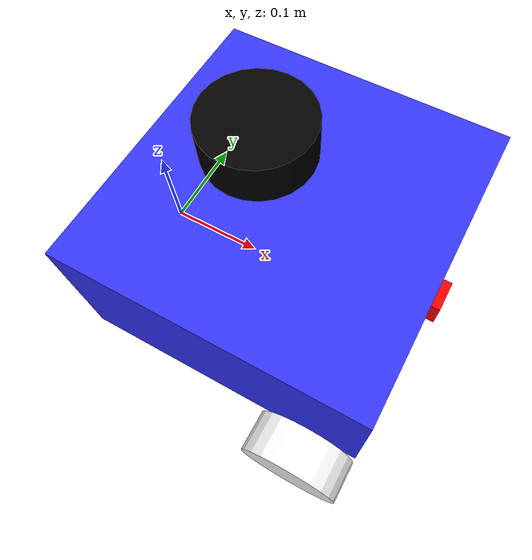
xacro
<?xml version="1.0"?>
<robot xmlns:xacro="http://www.ros.org/wiki/xacro"  name="robot">

    <xacro:include filename = "robot_core.xacro"/>

    <xacro:include filename = "gazebo_control.xacro"/>

    <xacro:include filename = "lidar.xacro"/>

    <xacro:include filename = "camera.xacro"/>

</robot>

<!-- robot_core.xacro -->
<robot xmlns:xacro="http://www.ros.org/wiki/xacro">

    <xacro:include filename="inertial_macros.xacro"/>

    <material name="white">
        <color rgba="1 1 1 1"/>
    </material>

    <material name="orange">
        <color rgba="1 0.3 0.1 1"/>
    </material>

    <material name="blue">
        <color rgba="0.2 0.2 1 1"/>
    </material>

    <material name="black">
        <color rgba="0 0 0 1"/>
    </material>

    <material name="red">
        <color rgba="1 0 0 1"/>
    </material>

    <!-- BASE LINK/-->

    <link name="base_link">

    </link>

    <link name="base_footprint"></link>

    <joint name="base_joint" type="fixed">
        <parent link="base_footprint"/>
        <child link="base_link"/>
        <origin xyz="0 0 0"/>
    </joint>

    <!--CHASSIS LINK/-->

    <joint name="chassis_joint" type="fixed">
        <parent link="base_link"/>
        <child link="chassis"/>
        <origin xyz="0 0 0"/>
    </joint>

    <link name="chassis">
        <inertial>
            <mass value="0.5"/>
            <origin rpy="0 0 0" xyz="0.15 0 0.075"/>
            <inertia ixx="0.00395416666667" ixy="0" ixz="0" iyy="0.0106208333333" iyz="0" izz="0.0106208333333"/>
        </inertial>
        <visual>
            <origin xyz="0.15 0 0.075"/>
            <geometry>
                <box size="0.3 0.3 0.15"/>
            </geometry>
            <material name="blue"/>
        </visual>
        <collision>
            <origin xyz="0.15 0 0.075"/>
            <geometry>
                <box size="0.3 0.3 0.15"/>
            </geometry>
        </collision>
    </link>

    <gazebo reference = "chassis">
        <material>Gazebo/Blue</material>
    </gazebo>

    <!-- LEFT WHEEL LINK -->

    <joint name="left_wheel_joint" type="continuous">
            <parent link="chassis"/>
            <child link="left_wheel"/>
            <origin xyz="0.25 0.175 0" rpy="-${pi/2} 0 0"/>
            <axis xyz="0 0 1"/>
    </joint>

    <link name="left_wheel">
        <visual>
            <geometry>
                <cylinder radius="0.05" length="0.04"/>
            </geometry>
            <material name="white"/>
        </visual>
        <collision>
            <geometry>
                <cylinder radius="0.05" length="0.04"/>
            </geometry>
        </collision>
        <inertial>
            <mass value="0.2"/>
            <origin rpy="0 0 0" xyz="0 0 0"/>
            <inertia ixx="0.000151667" ixy="0" ixz="0" iyy="0.000151667" iyz="0" izz="0.00025"/>
        </inertial>
    </link>

    <gazebo reference = "left_wheel">
        <material>Gazebo/White</material>
    </gazebo>

 <!-- RIGHT WHEEL LINK -->

    <joint name="right_wheel_joint" type="continuous">
            <parent link="chassis"/>
            <child link="right_wheel"/>
            <origin xyz="0.25 -0.175 0" rpy="${pi/2} 0 0"/>
            <axis xyz="0 0 -1"/>
    </joint>

    <link name="right_wheel">
        <visual>
            <origin xyz="0 0 0" rpy="0 0 0"/>
            <geometry>
                <cylinder radius="0.05" length="0.04"/>
            </geometry>
            <material name="white"/>
        </visual>
        <collision>
            <geometry>
                <cylinder radius="0.05" length="0.04"/>
            </geometry>
        </collision>
        <inertial>
            <mass value="0.2"/>
            <origin rpy="0 0 0" xyz="0 0 0"/>
            <inertia ixx="0.000151667" ixy="0" ixz="0" iyy="0.000151667" iyz="0" izz="0.00025"/>
        </inertial>
    </link>

    <gazebo reference = "right_wheel">
        <material>Gazebo/White</material>
    </gazebo>

 <!-- CASTER WHEEL LINK-->

    <joint name="caster_wheel_joint" type="fixed">
        <parent link="chassis"/>
        <child link="caster_wheel"/>
        <origin xyz="0.05 0 0"/>
    </joint>

    <link name="caster_wheel">
        <visual>
            <geometry>
                <sphere radius="0.05"/>
            </geometry>
            <material name="white"/>
        </visual>
        <collision>
            <geometry>
                <sphere radius="0.05"/>
            </geometry>
        </collision>
        <inertial>
            <mass value="0.2"/>
            <origin rpy="0 0 0" xyz="0 0 0"/>
            <inertia ixx="0.0003" ixy="0" ixz="0" iyy="0.0003" iyz="0" izz="0.0003"/>
        </inertial>
    </link>

    <gazebo reference = "caster_wheel">
        <material>Gazebo/White</material>
        <mu1 value = "0.001"/>
        <mu2 value = "0.001"/>
    </gazebo>

</robot>

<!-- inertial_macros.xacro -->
<robot xmlns:xacro="http://www.ros.org/wiki/xacro" >

    <!-- Specify some standard inertial calculations https://en.wikipedia.org/wiki/List_of_moments_of_inertia -->

    <xacro:macro name="inertial_sphere" params="mass radius *origin">
        <inertial>
            <xacro:insert_block name="origin"/>
            <mass value="${mass}" />
            <inertia ixx="${(2/5) * mass * (radius*radius)}" ixy="0.0" ixz="0.0"
                    iyy="${(2/5) * mass * (radius*radius)}" iyz="0.0"
                    izz="${(2/5) * mass * (radius*radius)}" />
        </inertial>
    </xacro:macro>

    <xacro:macro name="inertial_box" params="mass x y z *origin">
        <inertial>
            <xacro:insert_block name="origin"/>
            <mass value="${mass}" />
            <inertia ixx="${(1/12) * mass * (y*y+z*z)}" ixy="0.0" ixz="0.0"
                    iyy="${(1/12) * mass * (x*x+z*z)}" iyz="0.0"
                    izz="${(1/12) * mass * (x*x+y*y)}" />
        </inertial>
    </xacro:macro>

    <xacro:macro name="inertial_cylinder" params="mass length radius *origin">
        <inertial>
            <xacro:insert_block name="origin"/>
            <mass value="${mass}" />
            <inertia ixx="${(1/12) * mass * (3*radius*radius + length*length)}" ixy="0.0" ixz="0.0"
                    iyy="${(1/12) * mass * (3*radius*radius + length*length)}" iyz="0.0"
                    izz="${(1/2) * mass * (radius*radius)}" />
        </inertial>
    </xacro:macro>

</robot>

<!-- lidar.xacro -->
<robot xmlns:xacro="http://www.ros.org/wiki/xacro" >

    <joint name="laser_joint" type="fixed">
        <parent link="chassis"/>
        <child link="laser_frame"/>
        <origin xyz="0.122 0 0.212" rpy="0 0 0"/>
    </joint>

    <link name="laser_frame">
        <visual>
            <geometry>
                <cylinder radius="0.05" length="0.04"/>
            </geometry>
            <material name="black"/>
        </visual>
        <visual>
            <origin xyz="0 0 -0.05"/>
            <geometry>
                <cylinder radius="0.01" length="0.1"/>
            </geometry>
            <material name="black"/>
        </visual>
        <collision>
            <geometry>
                <cylinder radius="0.05" length="0.04"/>
            </geometry>
        </collision>
        <xacro:inertial_cylinder mass="0.1" length="0.04" radius="0.05">
            <origin xyz="0 0 0" rpy="0 0 0"/>
        </xacro:inertial_cylinder>
    </link>

    <gazebo reference="laser_frame">
        <material>Gazebo/Black</material>

        <sensor name="laser" type="ray">
            <pose> 0 0 0 0 0 0 </pose>
            <visualize>false</visualize>
            <update_rate>10</update_rate>
            <ray>
                <scan>
                    <horizontal>
                        <samples>360</samples>
                        <min_angle>-3.14</min_angle>
                        <max_angle>3.14</max_angle>
                    </horizontal>
                </scan>
                <range>
                    <min>0.3</min>
                    <max>12</max>
                </range>
                <noise>
                    <type>gaussian</type>
                    <mean>0.0</mean>
                    <stddev>0.01</stddev>
                </noise>
            </ray>
            <plugin name="laser_controller" filename="libgazebo_ros_ray_sensor.so">
                <ros>
                    <argument>~/out:=scan</argument>
                </ros>
                <output_type>sensor_msgs/LaserScan</output_type>
                <frame_name>laser_frame</frame_name>
            </plugin>
        </sensor>
    </gazebo>

</robot>

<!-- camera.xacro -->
<robot xmlns:xacro="http://www.ros.org/wiki/xacro" >

    <joint name="camera_joint" type="fixed">
        <parent link="chassis"/>
        <child link="camera_link"/>
        <origin xyz="0.305 0 0.08" rpy="0 0 0"/>
    </joint>

    <link name="camera_link">
        <visual>
            <geometry>
                <box size="0.01 0.03 0.03"/>
            </geometry>
            <material name="red"/>
        </visual>

    </link>

     <joint name="camera_optical_joint" type="fixed">
        <parent link="camera_link"/>
        <child link="camera_link_optical"/>
        <origin xyz="0 0 0" rpy="${-pi/2} 0 ${-pi/2}"/>
    </joint>

    <link name="camera_link_optical"></link>

    <gazebo reference="camera_link">
        <material>Gazebo/Red</material>

        <sensor name="camera" type="camera">
            <pose> 0 0 0 0 0 0 </pose>
            <visualize>true</visualize>
            <update_rate>10</update_rate>
            <camera>
                <horizontal_fov>1.089</horizontal_fov>
                <image>
                    <format>R8G8B8</format>
                    <width>640</width>
                    <height>480</height>
                </image>
                <clip>
                    <near>0.05</near>
                    <far>8.0</far>
                </clip>
            </camera>
            <plugin name="camera_controller" filename="libgazebo_ros_camera.so">
                <frame_name>camera_link_optical</frame_name>
            </plugin>
        </sensor>
    </gazebo>
</robot>
